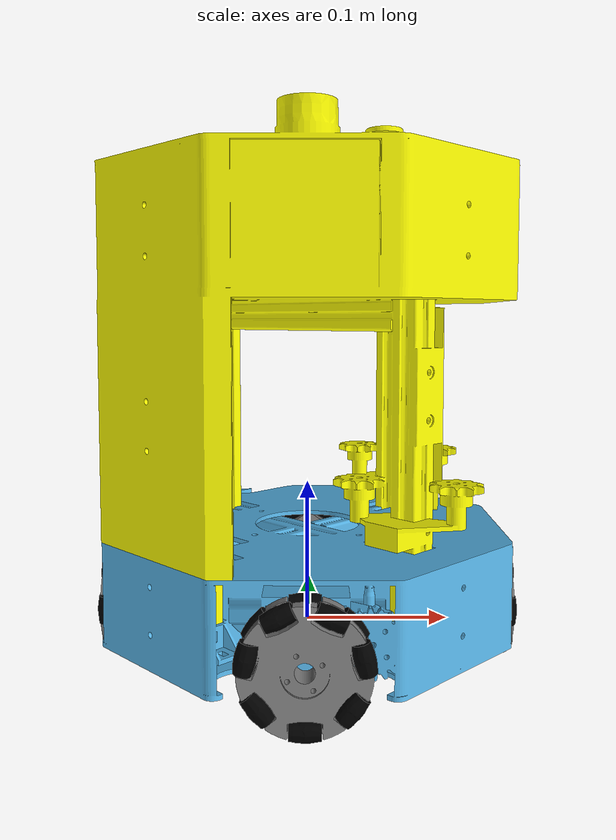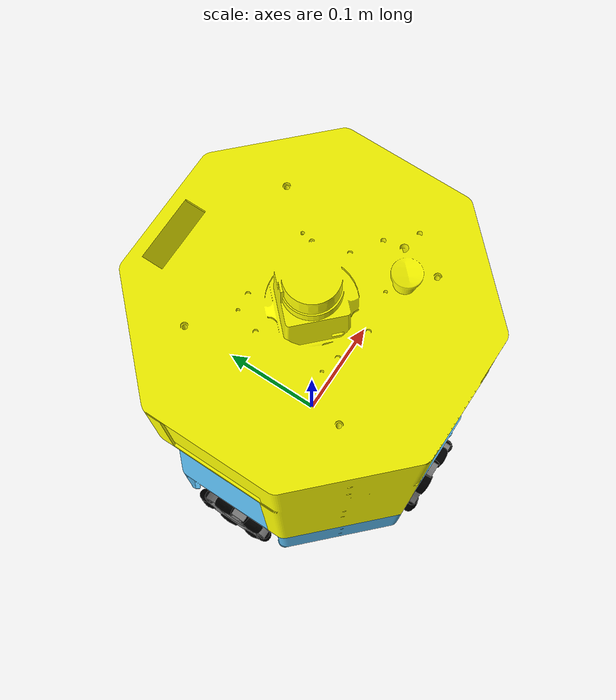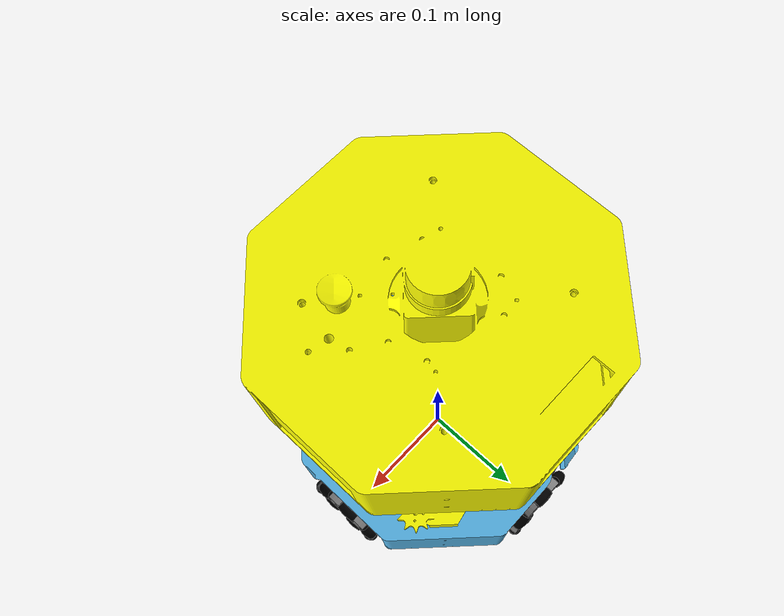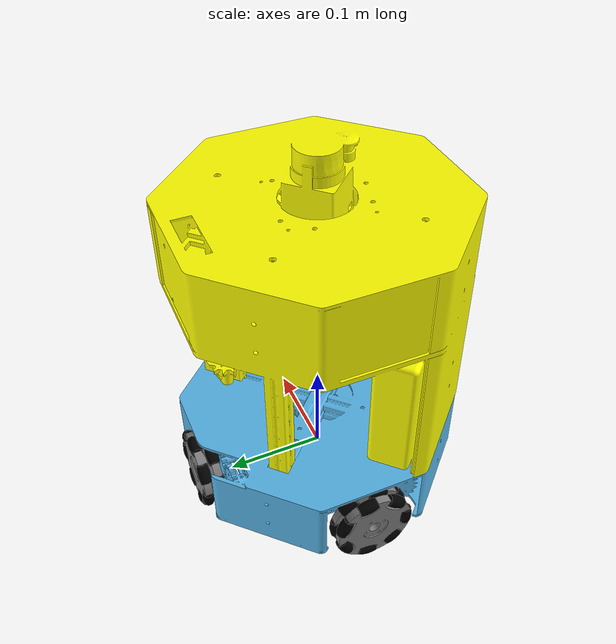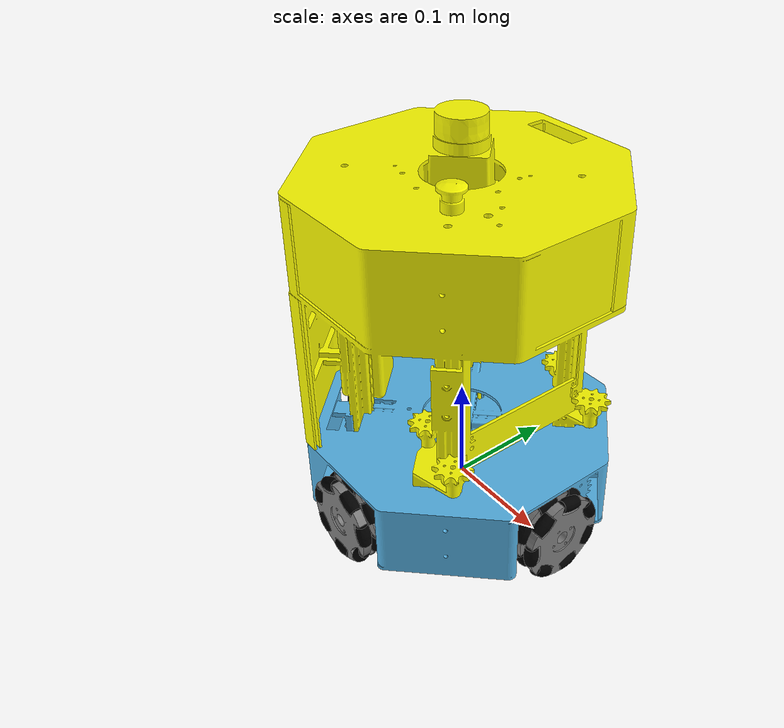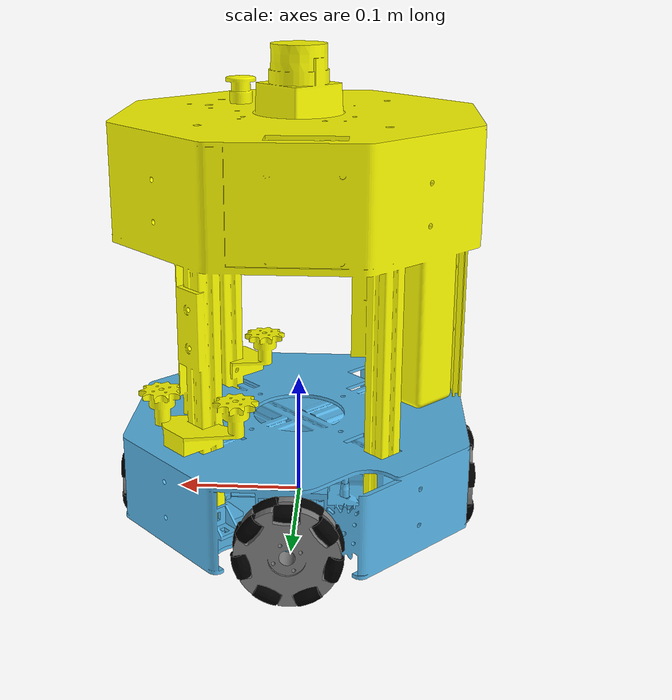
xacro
<?xml version="1.0"?>
<robot name="atlas" xmlns:xacro="http://www.ros.org/wiki/xacro">

    <xacro:include filename="$(find robot_description)/urdf/base/base.urdf.xacro"/>
    <xacro:include filename="$(find robot_description)/urdf/wheel/wheel.urdf.xacro"/>
    <xacro:include filename="$(find robot_description)/urdf/wheel_roller/wheel_roller.urdf.xacro"/>
    <xacro:include filename="$(find robot_description)/urdf/top/top.urdf.xacro"/>
    <xacro:include filename="$(find robot_description)/urdf/lrf/lrf.urdf.xacro"/>

    <xacro:property name="chassis_radius" value="0.26"/>
    <xacro:property name="chassis_wheel_separation" value="0.018"/>
    <xacro:property name="wheel_roller_radius" value="0.0345"/>
    <xacro:property name="wheel_roller_center_out" value="0.0065"/>

    <!-- Wheel positions -->
    <!-- Rotate the four values to change which wheel is in which position -->
    <xacro:property name="wheel_pos_id_left" value="0"/>
    <xacro:property name="wheel_pos_id_right" value="2"/>
    <xacro:property name="wheel_pos_id_front" value="3"/>
    <xacro:property name="wheel_pos_id_back" value="1"/>

    <!-- Base -->
    <link name="base_footprint"/>
    <xacro:base_v0 parent="base_footprint">
        <origin xyz="0 0 0" rpy="0 0 0"/>
    </xacro:base_v0>

    <!-- Top -->
    <xacro:top_v0 parent="base_link">
        <origin xyz="0 0 0" rpy="0 0 0"/>
    </xacro:top_v0>

    <!-- Wheels -->
    <!-- Left wheel -->
    <xacro:wheel_v0 prefix="left" parent="base_link">
        <origin
                xyz="${chassis_radius / 2 * cos(pi/2 * wheel_pos_id_left)} ${chassis_radius / 2 * sin(pi/2 * wheel_pos_id_left)} ${chassis_wheel_separation}"
                rpy="${pi/2 * wheel_pos_id_left} 0 ${-pi/2 * wheel_pos_id_left}"
        />
        <axis xyz="1 0 0"/>
    </xacro:wheel_v0>

    <!-- Rollers Left wheel inside -->
    <!-- It is a kind of for loop -->
    <!-- The for loop is made recursively -->
    <xacro:macro name="loop_rollers_wheel_left_in" params="links_qty">
        <!-- call some macros or do other things -->
        <xacro:roller_v0 prefix="r${links_qty}_in_L" parent="left_wheel_link">
            <origin xyz="${-wheel_roller_center_out} ${wheel_roller_radius * cos(2*pi/7*links_qty)} ${wheel_roller_radius * sin(2*pi/7*links_qty)}"
                    rpy="${2*pi / 7 * links_qty} 0 0"/>
            <axis xyz="0 0 1"/>
        </xacro:roller_v0>

        <!-- recursive call and termination condition -->
        <xacro:if value="${links_qty-1}">
            <xacro:loop_rollers_wheel_left_in links_qty="${links_qty-1}"/>
        </xacro:if>
    </xacro:macro>

    <xacro:loop_rollers_wheel_left_in links_qty="7"/>

    <!-- Rollers Left wheel outside -->
    <!-- Outer rollers are place 180 degrees rotated compared to the inner rollers -->
    <xacro:macro name="loop_rollers_wheel_left_out" params="links_qty">
        <!-- call some macros or do other things -->
        <xacro:roller_v0 prefix="r${links_qty}_out_L" parent="left_wheel_link">
            <origin xyz="${wheel_roller_center_out} ${wheel_roller_radius * cos(2*pi/7*links_qty + pi)} ${wheel_roller_radius * sin(2*pi/7*links_qty + pi)}"
                    rpy="${2*pi / 7 * links_qty + pi} 0 0"/>
            <axis xyz="0 0 1"/>
        </xacro:roller_v0>

        <!-- recursive call and termination condition -->
        <xacro:if value="${links_qty-1}">
            <xacro:loop_rollers_wheel_left_out links_qty="${links_qty-1}"/>
        </xacro:if>
    </xacro:macro>

    <xacro:loop_rollers_wheel_left_out links_qty="7"/>

    <!-- Right wheel -->
    <xacro:wheel_v0 prefix="right" parent="base_link">
        <origin xyz="${chassis_radius / 2 * cos(pi/2 * wheel_pos_id_right)} ${chassis_radius / 2 * sin(pi/2 * wheel_pos_id_right)} ${chassis_wheel_separation}"
                rpy="${pi/2*wheel_pos_id_right} 0 ${-pi/2*wheel_pos_id_right}"/>
        <axis xyz="1 0 0"/>
    </xacro:wheel_v0>

    <!-- Rollers Right wheel inside -->
    <xacro:macro name="loop_rollers_wheel_right_in" params="links_qty">
        <!-- call some macros or do other things -->
        <xacro:roller_v0 prefix="r${links_qty}_in_R" parent="right_wheel_link">
            <origin xyz="${-wheel_roller_center_out} ${wheel_roller_radius * cos(2*pi/7*links_qty)} ${wheel_roller_radius * sin(2*pi/7*links_qty)}"
                    rpy="${2*pi / 7 * links_qty} 0 0"/>
            <axis xyz="0 0 1"/>
        </xacro:roller_v0>

        <!-- recursive call and termination condition -->
        <xacro:if value="${links_qty-1}">
            <xacro:loop_rollers_wheel_right_in links_qty="${links_qty-1}"/>
        </xacro:if>
    </xacro:macro>

    <xacro:loop_rollers_wheel_right_in links_qty="7"/>

    <!-- Rollers Right wheel outside -->
    <xacro:macro name="loop_rollers_wheel_right_out" params="links_qty">
        <!-- call some macros or do other things -->
        <xacro:roller_v0 prefix="r${links_qty}_out_R" parent="right_wheel_link">
            <origin xyz="${wheel_roller_center_out} ${wheel_roller_radius * cos(2*pi/7*links_qty + pi)} ${wheel_roller_radius * sin(2*pi/7*links_qty + pi)}"
                    rpy="${2*pi / 7 * links_qty + pi} 0 0"/>
            <axis xyz="0 0 1"/>
        </xacro:roller_v0>

        <!-- recursive call and termination condition -->
        <xacro:if value="${links_qty-1}">
            <xacro:loop_rollers_wheel_right_out links_qty="${links_qty-1}"/>
        </xacro:if>
    </xacro:macro>

    <xacro:loop_rollers_wheel_right_out links_qty="7"/>

    <!-- Front wheel -->
    <xacro:wheel_v0 prefix="front" parent="base_link">
        <origin xyz="${chassis_radius / 2 * cos(pi/2 * wheel_pos_id_front)} ${chassis_radius / 2 * sin(pi/2 * wheel_pos_id_front)} ${chassis_wheel_separation}"
                rpy="${-pi/2*wheel_pos_id_front} 0 ${+pi/2*wheel_pos_id_front}"/>
        <axis xyz="1 0 0"/>
    </xacro:wheel_v0>

    <!-- Rollers Front wheel inside -->
    <xacro:macro name="loop_rollers_wheel_front_in" params="links_qty">
        <!-- call some macros or do other things -->
        <xacro:roller_v0 prefix="r${links_qty}_in_F" parent="front_wheel_link">
            <origin xyz="${-wheel_roller_center_out} ${wheel_roller_radius * cos(2*pi/7*links_qty)} ${wheel_roller_radius * sin(2*pi/7*links_qty)}"
                    rpy="${2*pi / 7 * links_qty} 0 0"/>
            <axis xyz="0 0 1"/>
        </xacro:roller_v0>

        <!-- recursive call and termination condition -->
        <xacro:if value="${links_qty-1}">
            <xacro:loop_rollers_wheel_front_in links_qty="${links_qty-1}"/>
        </xacro:if>
    </xacro:macro>

    <xacro:loop_rollers_wheel_front_in links_qty="7"/>

    <!-- Rollers Front wheel outside -->
    <xacro:macro name="loop_rollers_wheel_front_out" params="links_qty">
        <!-- call some macros or do other things -->
        <xacro:roller_v0 prefix="r${links_qty}_out_F" parent="front_wheel_link">
            <origin xyz="${wheel_roller_center_out} ${wheel_roller_radius * cos(2*pi/7*links_qty + pi)} ${wheel_roller_radius * sin(2*pi/7*links_qty + pi)}"
                    rpy="${2*pi / 7 * links_qty + pi} 0 0"/>
            <axis xyz="0 0 1"/>
        </xacro:roller_v0>

        <!-- recursive call and termination condition -->
        <xacro:if value="${links_qty-1}">
            <xacro:loop_rollers_wheel_front_out links_qty="${links_qty-1}"/>
        </xacro:if>
    </xacro:macro>

    <xacro:loop_rollers_wheel_front_out links_qty="7"/>

    <!-- Back wheel -->
    <xacro:wheel_v0 prefix="back" parent="base_link">
        <origin xyz="${chassis_radius / 2 * cos(pi/2 * wheel_pos_id_back)} ${chassis_radius / 2 * sin(pi/2 * wheel_pos_id_back)} ${chassis_wheel_separation}"
                rpy="${-pi/2*wheel_pos_id_back} 0 ${+pi/2*wheel_pos_id_back}"/>
        <axis xyz="1 0 0"/>
    </xacro:wheel_v0>

    <!-- Rollers Back wheel inside -->
    <xacro:macro name="loop_rollers_wheel_back_in" params="links_qty">
        <!-- call some macros or do other things -->
        <xacro:roller_v0 prefix="r${links_qty}_in_B" parent="back_wheel_link">
            <origin xyz="${-wheel_roller_center_out} ${wheel_roller_radius * cos(2*pi/7*links_qty)} ${wheel_roller_radius * sin(2*pi/7*links_qty)}"
                    rpy="${2*pi / 7 * links_qty} 0 0"/>
            <axis xyz="0 0 1"/>
        </xacro:roller_v0>

        <!-- recursive call and termination condition -->
        <xacro:if value="${links_qty-1}">
            <xacro:loop_rollers_wheel_back_in links_qty="${links_qty-1}"/>
        </xacro:if>
    </xacro:macro>

    <xacro:loop_rollers_wheel_back_in links_qty="7"/>

    <!-- Rollers Back wheel outside -->
    <xacro:macro name="loop_rollers_wheel_back_out" params="links_qty">
        <!-- call some macros or do other things -->
        <xacro:roller_v0 prefix="r${links_qty}_out_B" parent="back_wheel_link">
            <origin xyz="${wheel_roller_center_out} ${wheel_roller_radius * cos(2*pi/7*links_qty + pi)} ${wheel_roller_radius * sin(2*pi/7*links_qty + pi)}"
                    rpy="${2*pi / 7 * links_qty + pi} 0 0"/>
            <axis xyz="0 0 1"/>
        </xacro:roller_v0>

        <!-- recursive call and termination condition -->
        <xacro:if value="${links_qty-1}">
            <xacro:loop_rollers_wheel_back_out links_qty="${links_qty-1}"/>
        </xacro:if>
    </xacro:macro>

    <xacro:loop_rollers_wheel_back_out links_qty="7"/>

    <!-- lrf sensor -->
    <xacro:lrf_v0 parent="base_link">
        <origin xyz="0 0 0.352" rpy="0 0 0"/>
    </xacro:lrf_v0>

    <!-- ================= TRANSMISSIONS ================= -->
    <xacro:wheel_trans_v0 prefix="left"/>
    <xacro:wheel_trans_v0 prefix="right"/>
    <xacro:wheel_trans_v0 prefix="front"/>
    <xacro:wheel_trans_v0 prefix="back"/>

    <!-- ================= GAZEBO ================= -->
    <xacro:include filename="$(find robot_description)/robot/ros2_control.xacro"/>

    <gazebo>
        <plugin filename="libgazebo_ros2_control.so" name="gazebo_ros2_control">
            <parameters>$(find robot_simu)/config/controllers.yaml</parameters>
        </plugin>
    </gazebo>

    <!-- Base -->
    <xacro:base_gazebo_v0/>

    <!-- Top -->
    <xacro:top_gazebo_v0/>

    <!-- Wheels -->
    <xacro:wheel_gazebo_v0 prefix="left"/>
    <xacro:wheel_gazebo_v0 prefix="right"/>
    <xacro:wheel_gazebo_v0 prefix="front"/>
    <xacro:wheel_gazebo_v0 prefix="back"/>

    <!-- lrf sensor -->
    <xacro:lrf_gazebo_v0 min_rad = "-3.14" max_rad = "3.14" min_range = "0.1" max_range = "10"/>

</robot>

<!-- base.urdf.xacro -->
<robot xmlns:xacro="http://ros.org/wiki/xacro">

    <xacro:include filename="$(find robot_description)/robot/inertial_macros.xacro"/>

    <xacro:include filename="$(find robot_description)/urdf/base/base.gazebo.xacro"/>

    <xacro:property name="base_mass" value="1.5"/>
    <xacro:property name="base_radius" value="0.15"/>
    <xacro:property name="base_width" value="0.07"/>

    <xacro:macro name="base_v0" params="parent *joint_origin">
        <joint name="base_link_joint" type="fixed">
            <xacro:insert_block name="joint_origin"/>
            <parent link="${parent}"/>
            <child link="base_link"/>
        </joint>

        <link name="base_link">
            <visual>
                <origin xyz="0 0 0" rpy="${pi/2} 0 -${pi/4}"/>
                <geometry>
                    <mesh filename="package://robot_description/meshes/STL/chassis/chassis.stl"/>
                </geometry>
            </visual>
            <collision>
                <origin xyz="0 0 0" rpy="${pi/2} 0 -${pi/4}"/>
                <geometry>
                    <mesh filename="package://robot_description/meshes/STL/chassis/chassis.stl"/>
                </geometry>
            </collision>
            <xacro:inertial_cylinder mass="${base_mass}" length="${base_width}" radius="${base_radius}">-->
                <origin xyz="0 0 0.05" rpy="0 0 0"/>
            </xacro:inertial_cylinder>
            <surface>
                <friction>
                    <ode>
                        <mu>0.8</mu>
                        <mu2>0.8</mu2>
                        <kp>1e15</kp>
                        <kd>1e13</kd>
                    </ode>
                </friction>
                <bounce>
                    <restitution_coefficient>0.01</restitution_coefficient>
                    <threshold>10</threshold>
                </bounce>
                <contact>
                    <ode>
                        <max_vel>0.01</max_vel>
                        <minDepth>0</minDepth>
                        <contact_surface_layer>0</contact_surface_layer>
                    </ode>
                </contact>
            </surface>
        </link>
    </xacro:macro>
</robot>

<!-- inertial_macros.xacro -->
<robot xmlns:xacro="http://www.ros.org/wiki/xacro" >

    <!-- Specify some standard inertial calculations https://en.wikipedia.org/wiki/List_of_moments_of_inertia -->
    <!-- These make use of xacro's mathematical functionality -->

    <xacro:macro name="inertial_sphere" params="mass radius *origin">
        <inertial>
            <xacro:insert_block name="origin"/>
            <mass value="${mass}" />
            <inertia ixx="${(2/5) * mass * (radius*radius)}" ixy="0.0" ixz="0.0"
                     iyy="${(2/5) * mass * (radius*radius)}" iyz="0.0"
                     izz="${(2/5) * mass * (radius*radius)}" />
        </inertial>
    </xacro:macro>

    <xacro:macro name="inertial_box" params="mass x y z *origin">
        <inertial>
            <xacro:insert_block name="origin"/>
            <mass value="${mass}" />
            <inertia ixx="${(1/12) * mass * (y*y+z*z)}" ixy="0.0" ixz="0.0"
                     iyy="${(1/12) * mass * (x*x+z*z)}" iyz="0.0"
                     izz="${(1/12) * mass * (x*x+y*y)}" />
        </inertial>
    </xacro:macro>

    <xacro:macro name="inertial_cylinder" params="mass length radius *origin">
        <inertial>
            <xacro:insert_block name="origin"/>
            <mass value="${mass}" />
            <inertia ixx="${(1/12) * mass * (3*radius*radius + length*length)}" ixy="0.0" ixz="0.0"
                     iyy="${(1/12) * mass * (3*radius*radius + length*length)}" iyz="0.0"
                     izz="${(1/2) * mass * (radius*radius)}" />
        </inertial>
    </xacro:macro>

</robot>

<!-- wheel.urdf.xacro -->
<robot xmlns:xacro="http://ros.org/wiki/xacro">

    <xacro:include filename="$(find robot_description)/robot/inertial_macros.xacro"/>

    <xacro:include filename="$(find robot_description)/urdf/wheel/wheel.transmission.xacro"/>
    <xacro:include filename="$(find robot_description)/urdf/wheel/wheel.gazebo.xacro"/>

    <material name="grey">
        <color rgba="0.5 0.5 0.5 1"/>
    </material>

    <xacro:property name="wheel_mass" value="0.25"/>
    <xacro:property name="wheel_radius" value="0.048"/>
    <xacro:property name="wheel_width" value="0.01"/>

    <xacro:macro name="wheel_v0" params="prefix parent *joint_origin *joint_axis">
        <joint name="${prefix}_wheel_joint" type="continuous">
            <xacro:insert_block name="joint_origin"/>
            <parent link="${parent}"/>
            <child link="${prefix}_wheel_link"/>
            <limit effort="100" velocity="100"/>
            <xacro:insert_block name="joint_axis"/>
        </joint>

        <link name="${prefix}_wheel_link">
            <visual>
                <origin xyz="0 0 0" rpy="0 0 0"/>
                <geometry>
                    <mesh filename="package://robot_description/meshes/STL/wheel_base/wheel_base.stl"/>
                </geometry>
                <material name="grey"/>
            </visual>
            <collision>
                <origin xyz="0 0 0" rpy="0 0 0"/>
                <geometry>
                    <mesh filename="package://robot_description/meshes/STL/wheel_base/wheel_base.stl"/>
                </geometry>
            </collision>
            <xacro:inertial_cylinder mass="${wheel_mass}" length="${wheel_width}" radius="${wheel_radius}">-->
                        <origin xyz="0 0 0" rpy="0 0 0"/>
            </xacro:inertial_cylinder>

            <surface>
                <friction>
                    <ode>
                        <mu1>1.2</mu1>
                        <mu2>1.2</mu2>
                        <kp>1e15</kp>
                        <kd>1e13</kd>
                    </ode>
                </friction>
                <bounce>
                    <restitution_coefficient>0.01</restitution_coefficient>
                    <threshold>0</threshold>
                </bounce>
                <contact>
                    <ode>
                        <max_vel>10</max_vel>
                    </ode>
                </contact>
            </surface>
        </link>
    </xacro:macro>

</robot>

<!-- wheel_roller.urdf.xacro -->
<robot xmlns:xacro="http://ros.org/wiki/xacro">

    <xacro:include filename="$(find robot_description)/urdf/wheel_roller/wheel_roller.transmission.xacro"/>
    <xacro:include filename="$(find robot_description)/urdf/wheel_roller/wheel_roller.gazebo.xacro"/>

    <material name="black">
        <color rgba="0 0 0 1"/>
    </material>

    <xacro:property name="wheel_roller_mass" value="0.01"/>
    <xacro:property name="wheel_roller_radius" value="0.02"/>
    <xacro:property name="wheel_roller_width" value="0.01"/>

    <xacro:macro name="roller_v0" params="prefix parent *joint_origin *joint_axis">
        <joint name="${prefix}_roller_joint" type="continuous">
            <xacro:insert_block name="joint_origin"/>
            <parent link="${parent}"/>
            <child link="${prefix}_roller_link"/>
            <xacro:insert_block name="joint_axis"/>
            <joint_properties damping="0.0" friction="15000.0"/>
        </joint>

        <link name="${prefix}_roller_link">
            <visual>
                <geometry>
                    <mesh filename="package://robot_description/meshes/STL/rollers/wheel_roller_v2.stl"/>
                </geometry>
                <material name="black"/>
            </visual>
            <collision>
                <geometry>
                    <mesh filename="package://robot_description/meshes/STL/rollers/wheel_roller_v2.stl"/>
                </geometry>
            </collision>
            <xacro:inertial_cylinder mass="${wheel_roller_mass}" length="${wheel_roller_width}" radius="${wheel_roller_radius}">-->
                <origin xyz="0 0 0" rpy="0 0 0"/>
            </xacro:inertial_cylinder>
            <surface>
                <friction>
                    <ode>
                        <mu1>1.2</mu1>
                        <mu2>1.2</mu2>
                        <kp>1e15</kp>
                        <kd>1e13</kd>
                    </ode>
                </friction>
                <bounce>
                    <restitution_coefficient>0.01</restitution_coefficient>
                    <threshold>0</threshold>
                </bounce>
                <contact>
                    <ode>
                        <max_vel>10</max_vel>
                    </ode>
                </contact>
            </surface>
        </link>
    </xacro:macro>

</robot>

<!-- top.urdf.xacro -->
<robot xmlns:xacro="http://ros.org/wiki/xacro">

    <xacro:include filename="$(find robot_description)/urdf/top/top.gazebo.xacro"/>

    <!-- Yellow color -->
    <material name="top_material">
        <color rgba="1 1 0 1"/>
    </material>

    <xacro:property name="top_mass" value="3.0"/>
    <xacro:property name="top_radius" value="0.155"/>
    <xacro:property name="top_width" value="0.22"/>

    <xacro:macro name="top_v0" params="parent *joint_origin">
        <joint name="top_link_joint" type="fixed">
            <xacro:insert_block name="joint_origin"/>
            <parent link="${parent}"/>
            <child link="top_link"/>
        </joint>

        <link name="top_link">
            <visual>
                <origin xyz="0 0 0" rpy="${pi/2} 0 -${pi/4}"/>
                <geometry>
                    <mesh filename="package://robot_description/meshes/STL/top/top.stl"/>
                </geometry>
                <material name="top_material"/>
            </visual>
            <collision>
                <origin xyz="0 0 0" rpy="${pi/2} 0 -${pi/4}"/>
                <geometry>
                    <mesh filename="package://robot_description/meshes/STL/top/top.stl"/>
                </geometry>
            </collision>
            <xacro:inertial_cylinder mass="${top_mass}" length="${top_width}" radius="${top_radius}">-->
                <origin xyz="0 0 0.2" rpy="0 0 0"/>
            </xacro:inertial_cylinder>
            <surface>
                <friction>
                    <ode>
                        <mu>0.8</mu>
                        <mu2>0.8</mu2>
                        <kp>1e15</kp>
                        <kd>1e13</kd>
                    </ode>
                </friction>
                <bounce>
                    <restitution_coefficient>0.01</restitution_coefficient>
                    <threshold>10</threshold>
                </bounce>
                <contact>
                    <ode>
                        <max_vel>0.01</max_vel>
                        <minDepth>0</minDepth>
                        <contact_surface_layer>0</contact_surface_layer>
                    </ode>
                </contact>
            </surface>
        </link>
    </xacro:macro>
</robot>

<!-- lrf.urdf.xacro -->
<robot xmlns:xacro="http://ros.org/wiki/xacro">

	<!--xacro:include filename="$(find robot_description)/robot/???????"/-->

	<xacro:include filename="$(find robot_description)/urdf/lrf/lrf.gazebo.xacro"/>

	<xacro:macro name="lrf_v0" params="parent *joint_origin">
		<joint name="lrf_link_joint" type="fixed">
			<xacro:insert_block name="joint_origin"/>
			<parent link="${parent}"/>
			<child link="lrf_link"/>
		</joint>
		<link name="lrf_link">
		</link>
	</xacro:macro>

</robot>
